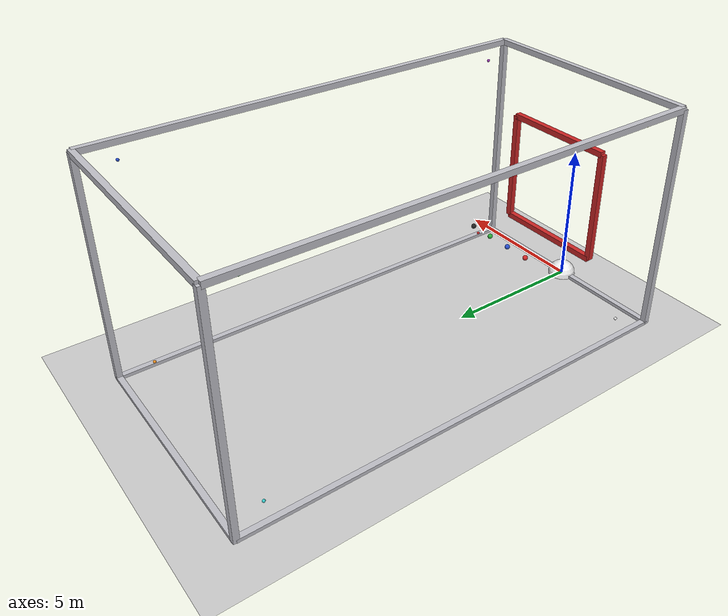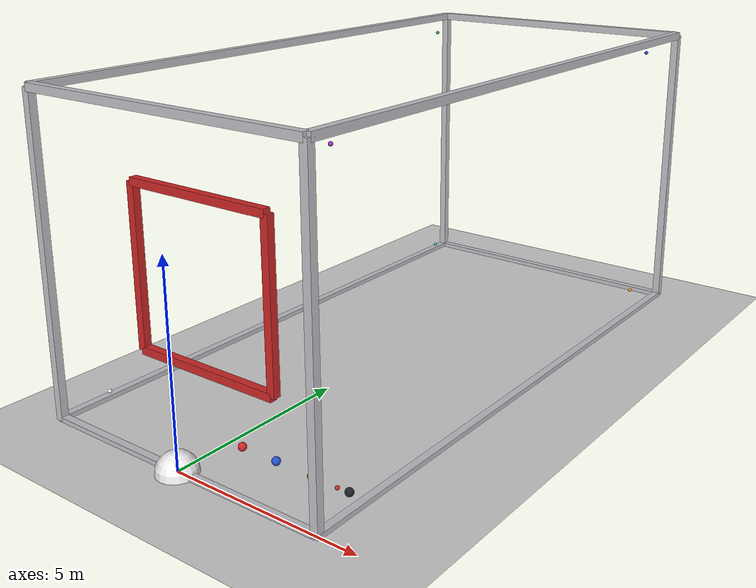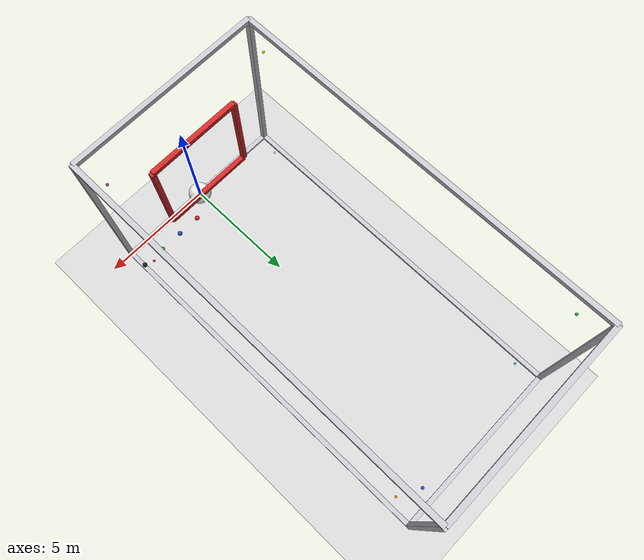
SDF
<?xml version="1.0" ?>
<sdf version="1.5">
<world name="default">
  <include>
    <uri>model://ground_plane</uri>
  </include>
  <include>
    <uri>model://sun</uri>
  </include>

  <!-- Support Columns -->
  <!-- 長辺 -->
  <model name="column1">
    <static>true</static>
    <link name="link">
      <collision name="collision">
        <geometry>
          <box>
            <size>0.2 0.2 16</size>
          </box>
        </geometry>
      </collision>
      <visual name="visual">
        <geometry>
          <box>
            <size>0.2 0.2 16</size>
          </box>
        </geometry>
        <material>
          <script>
            <uri>file://media/materials/scripts/gazebo.material</uri>
            <name>Gazebo/Silver</name>
          </script>
        </material>
      </visual>
    </link>
    <pose>4 8 0 1.5708 0 0</pose>
  </model>

  <model name="column2">
    <static>true</static>
    <link name="link">
      <collision name="collision">
        <geometry>
          <box>
            <size>0.2 0.2 16</size>
          </box>
        </geometry>
      </collision>
      <visual name="visual">
        <geometry>
          <box>
            <size>0.2 0.2 16</size>
          </box>
        </geometry>
        <material>
          <script>
            <uri>file://media/materials/scripts/gazebo.material</uri>
            <name>Gazebo/Silver</name>
          </script>
        </material>
      </visual>
    </link>
    <pose>-4 8 0 1.5708 0 0</pose>
  </model>

  <model name="column3">
    <static>true</static>
    <link name="link">
      <collision name="collision">
        <geometry>
          <box>
            <size>0.2 0.2 16</size>
          </box>
        </geometry>
      </collision>
      <visual name="visual">
        <geometry>
          <box>
            <size>0.2 0.2 16</size>
          </box>
        </geometry>
        <material>
          <script>
            <uri>file://media/materials/scripts/gazebo.material</uri>
            <name>Gazebo/Silver</name>
          </script>
        </material>
      </visual>
    </link>
    <pose>4 8 8 1.5708 0 0</pose>
  </model>

  <model name="column4">
    <static>true</static>
    <link name="link">
      <collision name="collision">
        <geometry>
          <box>
            <size>0.2 0.2 16</size>
          </box>
        </geometry>
      </collision>
      <visual name="visual">
        <geometry>
          <box>
            <size>0.2 0.2 16</size>
          </box>
        </geometry>
        <material>
          <script>
            <uri>file://media/materials/scripts/gazebo.material</uri>
            <name>Gazebo/Silver</name>
          </script>
        </material>
      </visual>
    </link>
    <pose>-4 8 8 1.5708 0 0</pose>
  </model>

  <!-- 短辺地面に水平 -->
  <model name="column5">
    <static>true</static>
    <link name="link">
      <collision name="collision">
        <geometry>
          <box>
            <size>0.2 0.2 8</size>
          </box>
        </geometry>
      </collision>
      <visual name="visual">
        <geometry>
          <box>
            <size>0.2 0.2 8</size>
          </box>
        </geometry>
        <material>
          <script>
            <uri>file://media/materials/scripts/gazebo.material</uri>
            <name>Gazebo/Silver</name>
          </script>
        </material>
      </visual>
    </link>
    <pose>0 0 0 0 1.5708 0</pose>
  </model>

  <model name="column6">
    <static>true</static>
    <link name="link">
      <collision name="collision">
        <geometry>
          <box>
            <size>0.2 0.2 8</size>
          </box>
        </geometry>
      </collision>
      <visual name="visual">
        <geometry>
          <box>
            <size>0.2 0.2 8</size>
          </box>
        </geometry>
        <material>
          <script>
            <uri>file://media/materials/scripts/gazebo.material</uri>
            <name>Gazebo/Silver</name>
          </script>
        </material>
      </visual>
    </link>
    <pose>0 0 8 0 1.5708 0</pose>
  </model>

  <model name="column7">
    <static>true</static>
    <link name="link">
      <collision name="collision">
        <geometry>
          <box>
            <size>0.2 0.2 8</size>
          </box>
        </geometry>
      </collision>
      <visual name="visual">
        <geometry>
          <box>
            <size>0.2 0.2 8</size>
          </box>
        </geometry>
        <material>
          <script>
            <uri>file://media/materials/scripts/gazebo.material</uri>
            <name>Gazebo/Silver</name>
          </script>
        </material>
      </visual>
    </link>
    <pose>0 16 0 0 1.5708 0</pose>
  </model>

  <model name="column8">
    <static>true</static>
    <link name="link">
      <collision name="collision">
        <geometry>
          <box>
            <size>0.2 0.2 8</size>
          </box>
        </geometry>
      </collision>
      <visual name="visual">
        <geometry>
          <box>
            <size>0.2 0.2 8</size>
          </box>
        </geometry>
        <material>
          <script>
            <uri>file://media/materials/scripts/gazebo.material</uri>
            <name>Gazebo/Silver</name>
          </script>
        </material>
      </visual>
    </link>
    <pose>0 16 8 0 1.5708 0</pose>
  </model>

  <!-- 短辺地面に垂直 -->
  <model name="column9">
    <static>true</static>
    <link name="link">
      <collision name="collision">
        <geometry>
          <box>
            <size>0.2 0.2 8</size>
          </box>
        </geometry>
      </collision>
      <visual name="visual">
        <geometry>
          <box>
            <size>0.2 0.2 8</size>
          </box>
        </geometry>
        <material>
          <script>
            <uri>file://media/materials/scripts/gazebo.material</uri>
            <name>Gazebo/Silver</name>
          </script>
        </material>
      </visual>
    </link>
    <pose>4 0 4 0 0 0</pose>
  </model>

  <model name="column10">
    <static>true</static>
    <link name="link">
      <collision name="collision">
        <geometry>
          <box>
            <size>0.2 0.2 8</size>
          </box>
        </geometry>
      </collision>
      <visual name="visual">
        <geometry>
          <box>
            <size>0.2 0.2 8</size>
          </box>
        </geometry>
        <material>
          <script>
            <uri>file://media/materials/scripts/gazebo.material</uri>
            <name>Gazebo/Silver</name>
          </script>
        </material>
      </visual>
    </link>
    <pose>-4 0 4 0 0 0</pose>
  </model>

  <model name="column11">
    <static>true</static>
    <link name="link">
      <collision name="collision">
        <geometry>
          <box>
            <size>0.2 0.2 8</size>
          </box>
        </geometry>
      </collision>
      <visual name="visual">
        <geometry>
          <box>
            <size>0.2 0.2 8</size>
          </box>
        </geometry>
        <material>
          <script>
            <uri>file://media/materials/scripts/gazebo.material</uri>
            <name>Gazebo/Silver</name>
          </script>
        </material>
      </visual>
    </link>
    <pose>4 16 4 0 0 0</pose>
  </model>

  <model name="column12">
    <static>true</static>
    <link name="link">
      <collision name="collision">
        <geometry>
          <box>
            <size>0.2 0.2 8</size>
          </box>
        </geometry>
      </collision>
      <visual name="visual">
        <geometry>
          <box>
            <size>0.2 0.2 8</size>
          </box>
        </geometry>
        <material>
          <script>
            <uri>file://media/materials/scripts/gazebo.material</uri>
            <name>Gazebo/Silver</name>
          </script>
        </material>
      </visual>
    </link>
    <pose>-4 16 4 0 0 0</pose>
  </model>

  <!-- Fixed Points -->
  <model name="fixed_point1">
    <static>true</static>
    <link name="link">
      <collision name="collision">
        <geometry>
          <sphere>
            <radius>0.05</radius>
          </sphere>
        </geometry>
      </collision>
        <visual name="visual">
          <geometry>
            <sphere>
              <radius>0.05</radius>
            </sphere>
          </geometry>
          <material>
            <script>
              <uri>file://media/materials/scripts/gazebo.material</uri>
              <name>Gazebo/Blue</name>
            </script>
          </material>
        </visual>
    </link>
    <pose>3.6 14.9 7.6 0 0 0</pose>
  </model>

  <model name="fixed_point2">
    <static>true</static>
    <link name="link">
      <collision name="collision">
        <geometry>
          <sphere>
            <radius>0.05</radius>
          </sphere>
        </geometry>
      </collision>
        <visual name="visual">
          <geometry>
            <sphere>
              <radius>0.05</radius>
            </sphere>
          </geometry>
          <material>
            <script>
              <uri>file://media/materials/scripts/gazebo.material</uri>
              <name>Gazebo/Green</name>
            </script>
          </material>
        </visual>
    </link>
    <pose>-3.6 14.9 7.6 0 0 0</pose>
  </model>

  <model name="fixed_point3">
    <static>true</static>
    <link name="link">
      <collision name="collision">
        <geometry>
          <sphere>
            <radius>0.05</radius>
          </sphere>
        </geometry>
      </collision>
        <visual name="visual">
          <geometry>
            <sphere>
              <radius>0.05</radius>
            </sphere>
          </geometry>
          <material>
            <script>
              <uri>file://media/materials/scripts/gazebo.material</uri>
              <name>Gazebo/Yellow</name>
            </script>
          </material>
        </visual>
    </link>
    <pose>-3.6 1.1 7.6 0 0 0</pose>
  </model>

  <model name="fixed_point4">
    <static>true</static>
    <link name="link">
      <collision name="collision">
        <geometry>
          <sphere>
            <radius>0.05</radius>
          </sphere>
        </geometry>
      </collision>
        <visual name="visual">
          <geometry>
            <sphere>
              <radius>0.05</radius>
            </sphere>
          </geometry>
          <material>
            <script>
              <uri>file://media/materials/scripts/gazebo.material</uri>
              <name>Gazebo/Purple</name>
            </script>
          </material>
        </visual>
    </link>
    <pose>3.6 1.1 7.6 0 0 0</pose>
  </model>

  <model name="fixed_point5">
    <static>true</static>
    <link name="link">
      <collision name="collision">
        <geometry>
          <sphere>
            <radius>0.05</radius>
          </sphere>
        </geometry>
      </collision>
        <visual name="visual">
          <geometry>
            <sphere>
              <radius>0.05</radius>
            </sphere>
          </geometry>
          <material>
            <script>
              <uri>file://media/materials/scripts/gazebo.material</uri>
              <name>Gazebo/Orange</name>
            </script>
          </material>
        </visual>
    </link>
    <pose>3.6 14.9 0.4 0 0 0</pose>
  </model>

  <model name="fixed_point6">
    <static>true</static>
    <link name="link">
      <collision name="collision">
        <geometry>
          <sphere>
            <radius>0.05</radius>
          </sphere>
        </geometry>
      </collision>
        <visual name="visual">
          <geometry>
            <sphere>
              <radius>0.05</radius>
            </sphere>
          </geometry>
          <material>
            <script>
              <uri>file://media/materials/scripts/gazebo.material</uri>
              <name>Gazebo/Turquoise</name>
            </script>
          </material>
        </visual>
    </link>
    <pose>-3.6 14.9 0.4 0 0 0</pose>
  </model>

  <model name="fixed_point7">
    <static>true</static>
    <link name="link">
      <collision name="collision">
        <geometry>
          <sphere>
            <radius>0.05</radius>
          </sphere>
        </geometry>
      </collision>
        <visual name="visual">
          <geometry>
            <sphere>
              <radius>0.05</radius>
            </sphere>
          </geometry>
          <material>
            <script>
              <uri>file://media/materials/scripts/gazebo.material</uri>
              <name>Gazebo/White</name>
            </script>
          </material>
        </visual>
    </link>
    <pose>-3.6 1.1 0.4 0 0 0</pose>
  </model>

  <model name="fixed_point8">
    <static>true</static>
    <link name="link">
      <collision name="collision">
        <geometry>
          <sphere>
            <radius>0.05</radius>
          </sphere>
        </geometry>
      </collision>
        <visual name="visual">
          <geometry>
            <sphere>
              <radius>0.05</radius>
            </sphere>
          </geometry>
          <material>
            <script>
              <uri>file://media/materials/scripts/gazebo.material</uri>
              <name>Gazebo/Red</name>
            </script>
          </material>
        </visual>
    </link>
    <pose>3.6 1.1 0.4 0 0 0</pose>
  </model>

  <model name="red_sphere">
    <static>false</static>
    <link name="link">
      <collision name="collision">
        <geometry>
          <sphere>
            <radius>0.1</radius>
          </sphere>
        </geometry>
      </collision>
      <visual name="visual">
        <geometry>
          <sphere>
            <radius>0.1</radius>
          </sphere>
        </geometry>
        <material>
          <script>
            <uri>file://media/materials/scripts/gazebo.material</uri>
            <name>Gazebo/Red</name>
          </script>
        </material>
      </visual>
    </link>
    <pose>1 1 0.5 0 0 0</pose>
  </model>

  <model name="blue_sphere">
    <static>false</static>
    <link name="link">
      <collision name="collision">
        <geometry>
          <sphere>
            <radius>0.1</radius>
          </sphere>
        </geometry>
      </collision>
      <visual name="visual">
        <geometry>
          <sphere>
            <radius>0.1</radius>
          </sphere>
        </geometry>
        <material>
          <script>
            <uri>file://media/materials/scripts/gazebo.material</uri>
            <name>Gazebo/Blue</name>
          </script>
        </material>
      </visual>
    </link>
    <pose>2 1 0.5 0 0 0</pose>
  </model>

  <model name="green_sphere">
    <static>false</static>
    <link name="link">
      <collision name="collision">
        <geometry>
          <sphere>
            <radius>0.1</radius>
          </sphere>
        </geometry>
      </collision>
      <visual name="visual">
        <geometry>
          <sphere>
            <radius>0.1</radius>
          </sphere>
        </geometry>
        <material>
          <script>
            <uri>file://media/materials/scripts/gazebo.material</uri>
            <name>Gazebo/Green</name>
          </script>
        </material>
      </visual>
    </link>
    <pose>3 1 0.5 0 0 0</pose>
  </model>

  <model name="black_sphere">
    <static>false</static>
    <link name="link">
      <collision name="collision">
        <geometry>
          <sphere>
            <radius>0.1</radius>
          </sphere>
        </geometry>
      </collision>
      <visual name="visual">
        <geometry>
          <sphere>
            <radius>0.1</radius>
          </sphere>
        </geometry>
        <material>
          <script>
            <uri>file://media/materials/scripts/gazebo.material</uri>
            <name>Gazebo/Black</name>
          </script>
        </material>
      </visual>
    </link>
    <pose>4 1 0.5 0 0 0</pose>
  </model>

  <model name="bouncing_object">
    <static>false</static>
    <link name="link">
      <collision name="collision">
        <geometry>
          <sphere>
            <radius>0.5</radius>
          </sphere>
        </geometry>
      </collision>
      <visual name="visual">
        <geometry>
          <sphere>
            <radius>0.5</radius>
          </sphere>
        </geometry>
        <material>
          <script>
            <uri>file://media/materials/scripts/gazebo.material</uri>
            <name>Gazebo/White</name>
          </script>
        </material>
      </visual>
    </link>
    <pose>0 0 0 0 0 0</pose>

  </model>

  <!-- Goal_Area -->
  <model name="goal1">
    <static>true</static>
    <link name="link">
      <collision name="collision">
        <geometry>
          <box>
            <size>0.2 0.2 4</size>
          </box>
        </geometry>
      </collision>
      <visual name="visual">
        <geometry>
          <box>
            <size>0.2 0.2 4</size>
          </box>
        </geometry>
        <material>
          <script>
            <uri>file://media/materials/scripts/gazebo.material</uri>
            <name>Gazebo/Red</name>
          </script>
        </material>
      </visual>
    </link>
    <pose>2 1 4 0 0 0</pose>
  </model>

  <model name="goal2">
    <static>true</static>
    <link name="link">
      <collision name="collision">
        <geometry>
          <box>
            <size>0.2 0.2 4</size>
          </box>
        </geometry>
      </collision>
      <visual name="visual">
        <geometry>
          <box>
            <size>0.2 0.2 4</size>
          </box>
        </geometry>
        <material>
          <script>
            <uri>file://media/materials/scripts/gazebo.material</uri>
            <name>Gazebo/Red</name>
          </script>
        </material>
      </visual>
    </link>
    <pose>-2 1 4 0 0 0</pose>
  </model>

  <model name="goal3">
    <static>true</static>
    <link name="link">
      <collision name="collision">
        <geometry>
          <box>
            <size>0.2 0.2 4</size>
          </box>
        </geometry>
      </collision>
      <visual name="visual">
        <geometry>
          <box>
            <size>0.2 0.2 4</size>
          </box>
        </geometry>
        <material>
          <script>
            <uri>file://media/materials/scripts/gazebo.material</uri>
            <name>Gazebo/Red</name>
          </script>
        </material>
      </visual>
    </link>
    <pose>0 1 2 0 1.5708 0</pose>
  </model>

  <model name="goal4">
    <static>true</static>
    <link name="link">
      <collision name="collision">
        <geometry>
          <box>
            <size>0.2 0.2 4</size>
          </box>
        </geometry>
      </collision>
      <visual name="visual">
        <geometry>
          <box>
            <size>0.2 0.2 4</size>
          </box>
        </geometry>
        <material>
          <script>
            <uri>file://media/materials/scripts/gazebo.material</uri>
            <name>Gazebo/Red</name>
          </script>
        </material>
      </visual>
    </link>
    <pose>0 1 6 0 1.5708 0</pose>
  </model>

</world>
</sdf>
